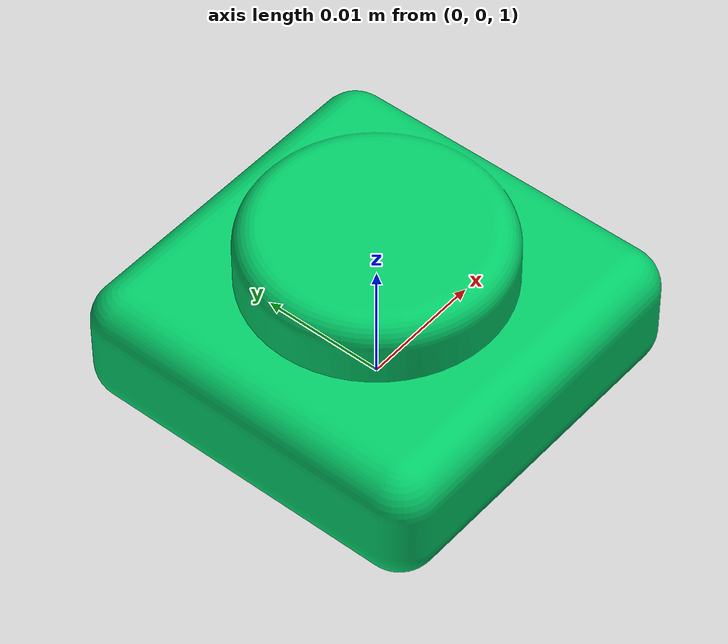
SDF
<?xml version="1.0" ?>
<sdf version="1.6">
  <model name="object">
    <pose>0 0 1 0 0 0</pose>
    <static>false</static>

    <link name="link_object">
      <inertial>
        <mass>0.01</mass>
        <pose>0 0 0.006127 0 0 0</pose>
        <inertia>
          <ixx>7.95e-7</ixx>
          <iyy>7.95e-7</iyy>
          <izz>1.303e-6</izz>
          <ixy>0</ixy><ixz>0</ixz><iyz>0</iyz>
        </inertia>
      </inertial>

      <collision name="collision">
        <geometry>
          <mesh>
            <uri>model://object/meshes/object.dae</uri>
          </mesh>
        </geometry>
      </collision>

      <visual name="visual">
        <geometry>
          <mesh>
            <uri>model://object/meshes/object.dae</uri>
          </mesh>
        </geometry>
      </visual>
    </link>
  </model>
</sdf>
